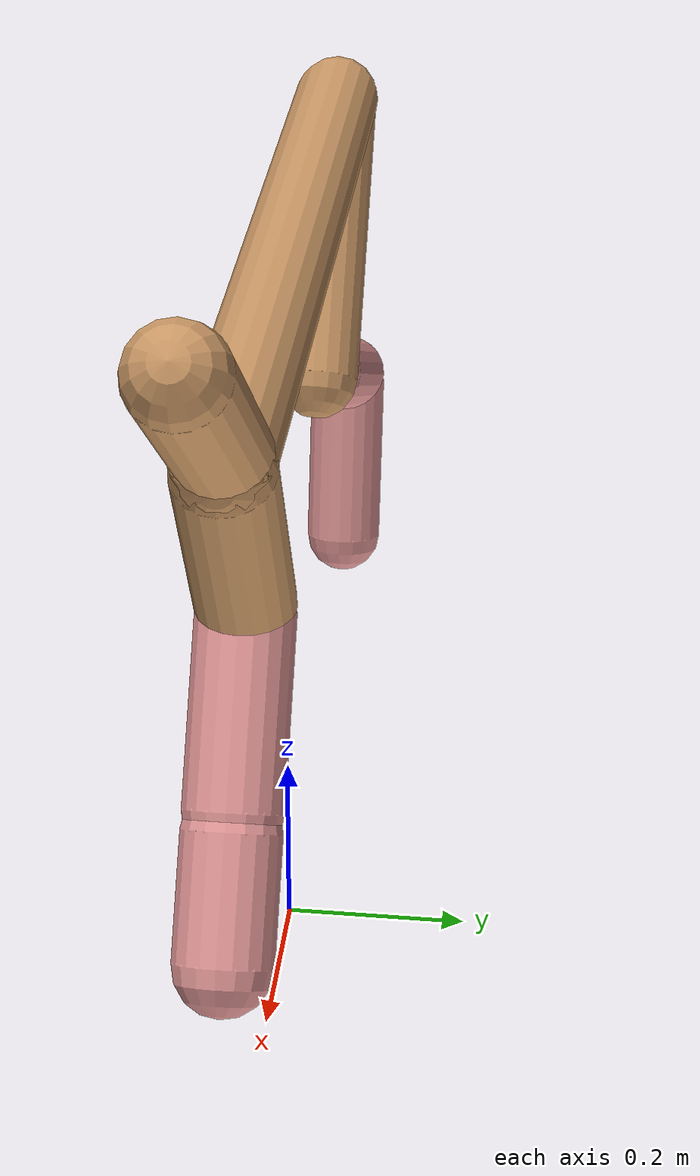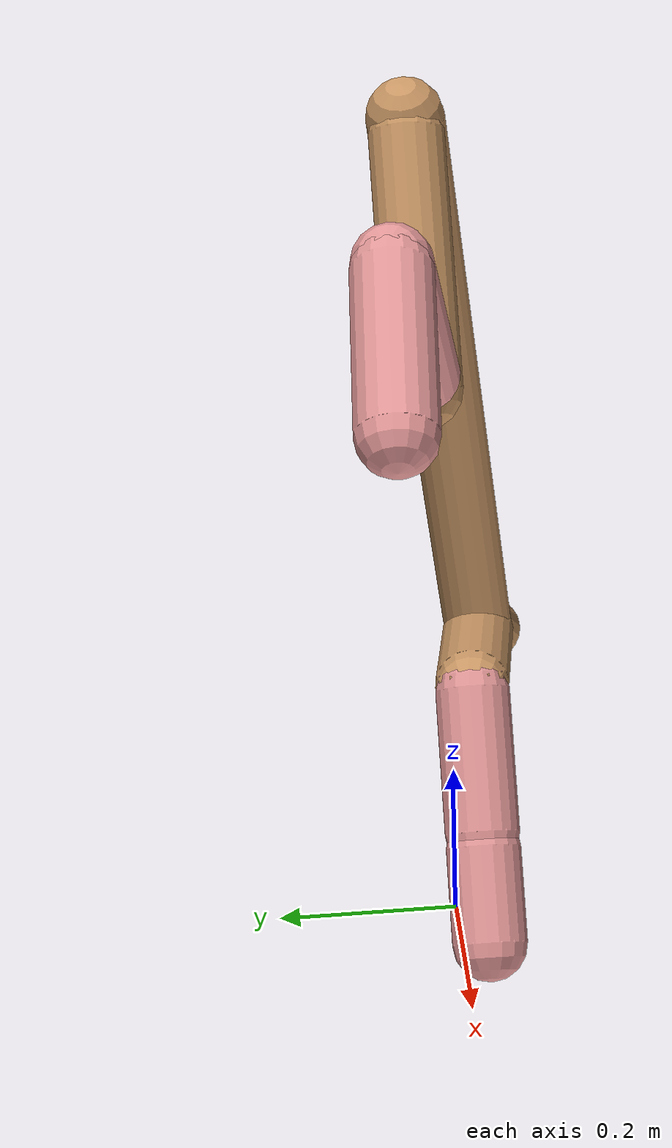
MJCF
<mujoco model="cheetah">
  <compiler angle="radian" coordinate="local" inertiafromgeom="true" settotalmass="14" />
  <default>
    <joint armature=".1" damping=".01" limited="true" solimplimit="0 .8 .03" solreflimit=".02 1" stiffness="8" />
    <geom conaffinity="0" condim="3" contype="1" friction="0.8 .1 .1" rgba="0.8 0.6 .4 1" solimp="0.0 0.8 0.01" solref="0.02 1" />
    <motor ctrllimited="true" ctrlrange="-1 1" />
  </default>
  <size nstack="300000" nuser_geom="1" />
  <option gravity="0 0 -9.81" timestep="0.01" />
  <worldbody>
    <body name="torso" pos="0.0 0.0 0.8007828345090567">
      <joint armature="0" axis="1 0 0" damping="0" limited="false" name="ignorex" pos="0 0 0" stiffness="0" type="slide" />
      <joint armature="0" axis="0 0 1" damping="0" limited="false" name="ignorez" pos="0 0 0" stiffness="0" type="slide" />
      <joint armature="0" axis="0 1 0" damping="0" limited="false" name="ignorey" pos="0 0 0" stiffness="0" type="hinge" />
      <geom fromto="-0.5 0.0 0.0 0.4144015096279001 0.0 0.0" name="torso" size="0.04785435427910337" type="capsule" />
      <geom axisangle="0 1 0 .87" name="head" pos="0.5144015096279001 0.0 0.1" size="0.04667491110703024 0.15" type="capsule" />

      <body name="bthigh" pos="-.5 0 0">
        <joint axis="0 1 0" damping="6" name="bthigh" pos="0 0 0" range="-.52 1.05" stiffness="240" type="hinge" />
        <geom axisangle="0 1 0 -3.8" name="bthigh" pos="0.10755086009561045 0.0 -0.13981611812429356" size="0.046067691980116524 0.15738433135916377" type="capsule" />
        <body name="bshin" pos="0.1751017201912209 0.0 -0.2696322362485871">
          <joint axis="0 1 0" damping="4.5" name="bshin" pos="0 0 0" range="-.785 .785" stiffness="180" type="hinge" />
          <geom axisangle="0 1 0 -2.03" name="bshin" pos="-0.15145884418274727 0.0 -0.07572942209137364" rgba="0.9 0.6 0.6 1" size="0.046067691980116524 0.16281137726810044" type="capsule" />
          <body name="bfoot" pos="-0.30291768836549454 0.0 -0.15145884418274727">
            <joint axis="0 1 0" damping="3" name="bfoot" pos="0 0 0" range="-.4 .785" stiffness="120" type="hinge" />
            <geom axisangle="0 1 0 -.27" name="bfoot" pos="0.032372167764104245 0.0 -0.10467000910393706" rgba="0.9 0.6 0.6 1" size="0.046067691980116524 0.10202846308800961" type="capsule" />
            <inertial mass="10" />
          </body>
        </body>
      </body>
      <body name="fthigh" pos="0.4144015096279001 0.0 0.0">
        <joint axis="0 1 0" damping="4.5" name="fthigh" pos="0 0 0" range="-1.5 0.8" stiffness="180" type="hinge" />
        <geom axisangle="0 1 0 .52" name="fthigh" pos="-0.06400596293388992 0.0 -0.10972450788666842" size="0.04997056566592599 0.12110402511262568" type="capsule" />
        <body name="fshin" pos="-0.12801192586777985 0.0 -0.21944901577333684">
          <joint axis="0 1 0" damping="3" name="fshin" pos="0 0 0" range="-1.2 1.1" stiffness="120" type="hinge" />
          <geom axisangle="0 1 0 -.6" name="fshin" pos="0.059448962570791714 0.0 -0.08231394817494236" rgba="0.9 0.6 0.6 1" size="0.04997056566592599 0.09651899745818286" type="capsule" />
          <body name="ffoot" pos="0.11889792514158343 0.0 -0.16462789634988473">
            <joint axis="0 1 0" damping="1.5" name="ffoot" pos="0 0 0" range="-3.1 -0.3" stiffness="60" type="hinge" />
            <geom axisangle="0 1 0 -.6" name="ffoot" pos="0.0416142954071461 0.0 -0.06473334841111615" rgba="0.9 0.6 0.6 1" size="0.04997056566592599 0.06373896058559246" type="capsule" />
            <inertial mass="10" />
          </body>
        </body>
      </body>
    </body>
  </worldbody>
  <actuator>
    <motor gear="120" joint="bthigh" name="bthigh" />
    <motor gear="90" joint="bshin" name="bshin" />
    <motor gear="60" joint="bfoot" name="bfoot" />
    <motor gear="120" joint="fthigh" name="fthigh" />
    <motor gear="60" joint="fshin" name="fshin" />
    <motor gear="30" joint="ffoot" name="ffoot" />
  </actuator>
</mujoco>
